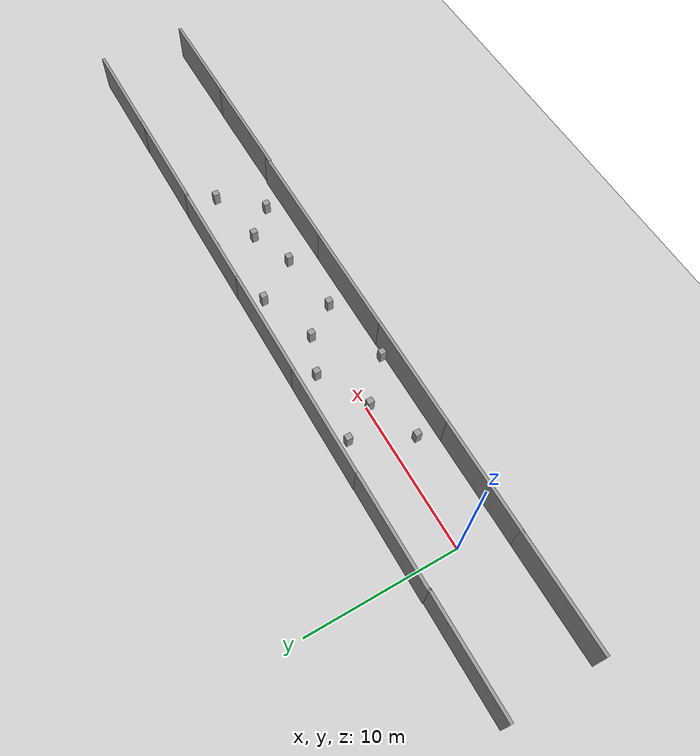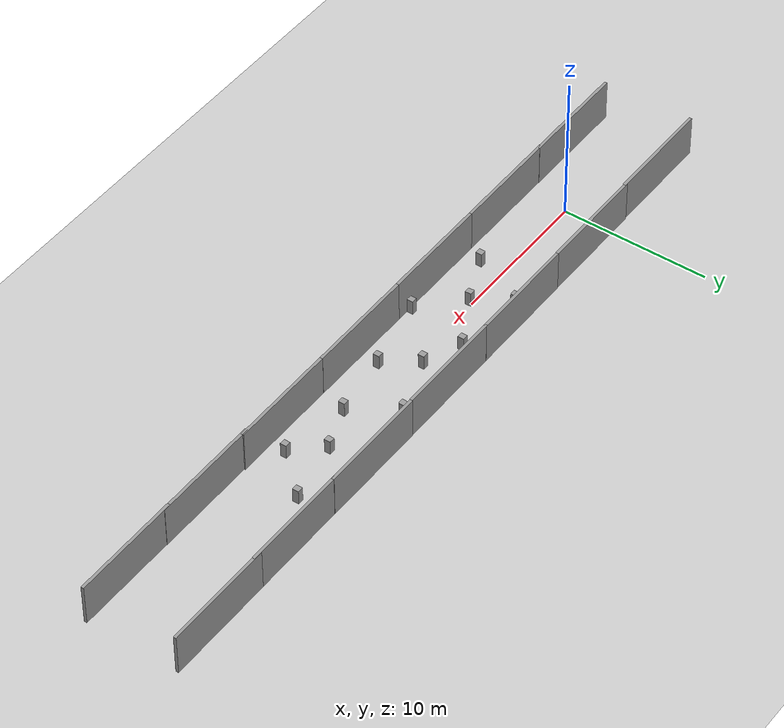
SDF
<sdf version="1.6">
 <world name="default">
  <plugin filename="gz-sim-physics-system" name="gz::sim::systems::Physics"/>
  <plugin filename="gz-sim-sensors-system" name="gz::sim::systems::Sensors">
   <render_engine>ogre2</render_engine>
  </plugin>
  <plugin filename="gz-sim-imu-system" name="gz::sim::systems::Imu"/>
  <plugin filename="gz-sim-scene-broadcaster-system" name="gz::sim::systems::SceneBroadcaster"/>
  <plugin filename="gz-sim-user-commands-system" name="gz::sim::systems::UserCommands"/>
  <light name="sun" type="directional">
   <pose>0 0 10 0 -0 0</pose>
   <diffuse>0.8 0.8 0.8 1</diffuse>
   <specular>0.2 0.2 0.2 1</specular>
   <attenuation>
    <range>1000</range>
    <constant>0.9</constant>
    <linear>0.01</linear>
    <quadratic>0.001</quadratic>
   </attenuation>
   <direction>-0.5 0.1 -0.9</direction>
  </light>
  <model name="ground_plane">
   <static>1</static>
   <link name="link">
    <collision name="collision">
     <geometry><plane><normal>0 0 1</normal><size>100 100</size></plane></geometry>
     <surface><friction><ode><mu>1000</mu><mu2>1000</mu2></ode></friction></surface>
    </collision>
    <visual name="visual">
     <cast_shadows>0</cast_shadows>
     <geometry><plane><normal>0 0 1</normal><size>100 100</size></plane></geometry>
     <material>
      <script><uri>file://media/materials/scripts/gazebo.material</uri><name>Gazebo/Grey</name></script>
     </material>
    </visual>
    <velocity_decay><linear>0</linear><angular>0</angular></velocity_decay>
   </link>
  </model>
  <physics name="default_physics" default="0" type="ode">
   <max_step_size>0.001</max_step_size>
   <real_time_factor>1</real_time_factor>
   <real_time_update_rate>1000</real_time_update_rate>
  </physics>
  <scene><ambient>0.4 0.4 0.4 1</ambient><background>0.7 0.7 0.7 1</background><shadows>1</shadows></scene>
  <spherical_coordinates>
   <surface_model>EARTH_WGS84</surface_model>
   <latitude_deg>0</latitude_deg>
   <longitude_deg>0</longitude_deg>
   <elevation>0</elevation>
   <heading_deg>0</heading_deg>
  </spherical_coordinates>
  <model name="grey_wall">
   <static>1</static>
   <link name="link">
    <pose>0 0 1.4 0 -0 0</pose>
    <collision name="collision"><geometry><box><size>7.5 0.2 2.8</size></box></geometry></collision>
    <visual name="visual">
     <cast_shadows>0</cast_shadows>
     <geometry><box><size>7.5 0.2 2.8</size></box></geometry>
     <material>
      <script>
       <uri>model://grey_wall/materials/scripts</uri>
       <uri>model://grey_wall/materials/textures</uri>
       <name>vrc/grey_wall</name>
      </script>
     </material>
    </visual>
    <velocity_decay><linear>0</linear><angular>0</angular></velocity_decay>
   </link>
   <pose>17.0188 3.262 0 0 -0 0</pose>
  </model>
  <model name="grey_wall_0">
   <static>1</static>
   <link name="link">
    <pose>0 0 1.4 0 -0 0</pose>
    <collision name="collision"><geometry><box><size>7.5 0.2 2.8</size></box></geometry></collision>
    <visual name="visual">
     <cast_shadows>0</cast_shadows>
     <geometry><box><size>7.5 0.2 2.8</size></box></geometry>
     <material>
      <script>
       <uri>model://grey_wall/materials/scripts</uri>
       <uri>model://grey_wall/materials/textures</uri>
       <name>vrc/grey_wall</name>
      </script>
     </material>
    </visual>
    <velocity_decay><linear>0</linear><angular>0</angular></velocity_decay>
   </link>
   <pose>17.2246 -2.87669 0 0 -0 0</pose>
  </model>
  <gravity>0 0 -9.8</gravity>
  <magnetic_field>6e-06 2.3e-05 -4.2e-05</magnetic_field>
  <atmosphere type="adiabatic"/>
  <model name="grey_wall_clone">
   <static>1</static>
   <link name="link">
    <pose>0 0 1.4 0 -0 0</pose>
    <collision name="collision"><geometry><box><size>7.5 0.2 2.8</size></box></geometry></collision>
    <visual name="visual">
     <cast_shadows>0</cast_shadows>
     <geometry><box><size>7.5 0.2 2.8</size></box></geometry>
     <material>
      <script>
       <uri>model://grey_wall/materials/scripts</uri>
       <uri>model://grey_wall/materials/textures</uri>
       <name>vrc/grey_wall</name>
      </script>
     </material>
    </visual>
    <velocity_decay><linear>0</linear><angular>0</angular></velocity_decay>
   </link>
   <pose>2.15825 3.25343 0 0 -0 0</pose>
  </model>
  <model name="grey_wall_clone_0">
   <static>1</static>
   <link name="link">
    <pose>0 0 1.4 0 -0 0</pose>
    <collision name="collision"><geometry><box><size>7.5 0.2 2.8</size></box></geometry></collision>
    <visual name="visual">
     <cast_shadows>0</cast_shadows>
     <geometry><box><size>7.5 0.2 2.8</size></box></geometry>
     <material>
      <script>
       <uri>model://grey_wall/materials/scripts</uri>
       <uri>model://grey_wall/materials/textures</uri>
       <name>vrc/grey_wall</name>
      </script>
     </material>
    </visual>
    <velocity_decay><linear>0</linear><angular>0</angular></velocity_decay>
   </link>
   <pose>2.23318 -2.88881 0 0 -0 0</pose>
  </model>
  <model name="grey_wall_clone_1">
   <static>1</static>
   <link name="link">
    <pose>0 0 1.4 0 -0 0</pose>
    <collision name="collision"><geometry><box><size>7.5 0.2 2.8</size></box></geometry></collision>
    <visual name="visual">
     <cast_shadows>0</cast_shadows>
     <geometry><box><size>7.5 0.2 2.8</size></box></geometry>
     <material>
      <script>
       <uri>model://grey_wall/materials/scripts</uri>
       <uri>model://grey_wall/materials/textures</uri>
       <name>vrc/grey_wall</name>
      </script>
     </material>
    </visual>
    <velocity_decay><linear>0</linear><angular>0</angular></velocity_decay>
   </link>
   <pose>9.72907 -2.8848 0 0 -0 0</pose>
  </model>
  <model name="grey_wall_clone_2">
   <static>1</static>
   <link name="link">
    <pose>0 0 1.4 0 -0 0</pose>
    <collision name="collision"><geometry><box><size>7.5 0.2 2.8</size></box></geometry></collision>
    <visual name="visual">
     <cast_shadows>0</cast_shadows>
     <geometry><box><size>7.5 0.2 2.8</size></box></geometry>
     <material>
      <script>
       <uri>model://grey_wall/materials/scripts</uri>
       <uri>model://grey_wall/materials/textures</uri>
       <name>vrc/grey_wall</name>
      </script>
     </material>
    </visual>
    <velocity_decay><linear>0</linear><angular>0</angular></velocity_decay>
   </link>
   <pose>9.63475 3.26714 0 0 -0 0</pose>
  </model>
  <model name="grey_wall_clone_3">
   <static>1</static>
   <link name="link">
    <pose>0 0 1.4 0 -0 0</pose>
    <collision name="collision"><geometry><box><size>7.5 0.2 2.8</size></box></geometry></collision>
    <visual name="visual">
     <cast_shadows>0</cast_shadows>
     <geometry><box><size>7.5 0.2 2.8</size></box></geometry>
     <material>
      <script>
       <uri>model://grey_wall/materials/scripts</uri>
       <uri>model://grey_wall/materials/textures</uri>
       <name>vrc/grey_wall</name>
      </script>
     </material>
    </visual>
    <velocity_decay><linear>0</linear><angular>0</angular></velocity_decay>
   </link>
   <pose>24.4959 3.27099 0 0 -0 0</pose>
  </model>
  <model name="grey_wall_clone_4">
   <static>1</static>
   <link name="link">
    <pose>0 0 1.4 0 -0 0</pose>
    <collision name="collision"><geometry><box><size>7.5 0.2 2.8</size></box></geometry></collision>
    <visual name="visual">
     <cast_shadows>0</cast_shadows>
     <geometry><box><size>7.5 0.2 2.8</size></box></geometry>
     <material>
      <script>
       <uri>model://grey_wall/materials/scripts</uri>
       <uri>model://grey_wall/materials/textures</uri>
       <name>vrc/grey_wall</name>
      </script>
     </material>
    </visual>
    <velocity_decay><linear>0</linear><angular>0</angular></velocity_decay>
   </link>
   <pose>24.6598 -2.88231 0 0 -0 0</pose>
  </model>
  <model name="unit_box_0">
   <pose>12.4786 -2.57348 0.5 0 -0 0</pose>
   <link name="link">
    <inertial>
     <mass>1</mass>
     <inertia>
      <ixx>0.166667</ixx>
      <ixy>0</ixy>
      <ixz>0</ixz>
      <iyy>0.166667</iyy>
      <iyz>0</iyz>
      <izz>0.166667</izz>
     </inertia>
    </inertial>
    <collision name="collision"><geometry><box><size>0.392878 0.422643 1</size></box></geometry></collision>
    <visual name="visual">
     <geometry><box><size>0.392878 0.422643 1</size></box></geometry>
     <material>
      <script><name>Gazebo/Grey</name><uri>file://media/materials/scripts/gazebo.material</uri></script>
     </material>
    </visual>
   </link>
  </model>
  <model name="unit_box_0_clone_3">
   <pose>6.79128 -1.57502 0.500001 -1e-06 2e-06 -0.000748</pose>
   <link name="link">
    <inertial>
     <mass>1</mass>
     <inertia>
      <ixx>0.166667</ixx>
      <ixy>0</ixy>
      <ixz>0</ixz>
      <iyy>0.166667</iyy>
      <iyz>0</iyz>
      <izz>0.166667</izz>
     </inertia>
    </inertial>
    <collision name="collision"><geometry><box><size>0.392878 0.422643 1</size></box></geometry></collision>
    <visual name="visual">
     <geometry><box><size>0.392878 0.422643 1</size></box></geometry>
     <material>
      <script><name>Gazebo/Grey</name><uri>file://media/materials/scripts/gazebo.material</uri></script>
     </material>
    </visual>
   </link>
  </model>
  <model name="unit_box_0_clone_5_clone">
   <pose>9.94472 -0.178867 0.500001 1e-06 2e-06 -0.000518</pose>
   <link name="link">
    <inertial>
     <mass>1</mass>
     <inertia>
      <ixx>0.166667</ixx>
      <ixy>0</ixy>
      <ixz>0</ixz>
      <iyy>0.166667</iyy>
      <iyz>0</iyz>
      <izz>0.166667</izz>
     </inertia>
    </inertial>
    <collision name="collision"><geometry><box><size>0.392878 0.422643 1</size></box></geometry></collision>
    <visual name="visual">
     <geometry><box><size>0.392878 0.422643 1</size></box></geometry>
     <material>
      <script><name>Gazebo/Grey</name><uri>file://media/materials/scripts/gazebo.material</uri></script>
     </material>
    </visual>
   </link>
  </model>
  <model name="unit_box_0_clone_5_clone_1">
   <pose>8.5737 2.15115 0.500001 1e-06 2e-06 -2.6e-05</pose>
   <link name="link">
    <inertial>
     <mass>1</mass>
     <inertia>
      <ixx>0.166667</ixx>
      <ixy>0</ixy>
      <ixz>0</ixz>
      <iyy>0.166667</iyy>
      <iyz>0</iyz>
      <izz>0.166667</izz>
     </inertia>
    </inertial>
    <collision name="collision"><geometry><box><size>0.392878 0.422643 1</size></box></geometry></collision>
    <visual name="visual">
     <geometry><box><size>0.392878 0.422643 1</size></box></geometry>
     <material>
      <script><name>Gazebo/Grey</name><uri>file://media/materials/scripts/gazebo.material</uri></script>
     </material>
    </visual>
   </link>
  </model>
  <model name="unit_box_0_clone_5_clone_2_clone_1">
   <pose>13.3136 1.65051 0.500001 1e-06 -2e-06 -0.00106</pose>
   <link name="link">
    <inertial>
     <mass>1</mass>
     <inertia>
      <ixx>0.166667</ixx>
      <ixy>0</ixy>
      <ixz>0</ixz>
      <iyy>0.166667</iyy>
      <iyz>0</iyz>
      <izz>0.166667</izz>
     </inertia>
    </inertial>
    <collision name="collision"><geometry><box><size>0.392878 0.422643 1</size></box></geometry></collision>
    <visual name="visual">
     <geometry><box><size>0.392878 0.422643 1</size></box></geometry>
     <material>
      <script><name>Gazebo/Grey</name><uri>file://media/materials/scripts/gazebo.material</uri></script>
     </material>
    </visual>
   </link>
  </model>
  <model name="unit_box_0_clone_5_clone_2_clone_1_clone_0">
   <pose>15.8486 0.614841 0.499999 4e-06 -3e-06 -0.000872</pose>
   <link name="link">
    <inertial>
     <mass>1</mass>
     <inertia>
      <ixx>0.166667</ixx>
      <ixy>0</ixy>
      <ixz>0</ixz>
      <iyy>0.166667</iyy>
      <iyz>0</iyz>
      <izz>0.166667</izz>
     </inertia>
    </inertial>
    <collision name="collision"><geometry><box><size>0.392878 0.422643 1</size></box></geometry></collision>
    <visual name="visual">
     <geometry><box><size>0.392878 0.422643 1</size></box></geometry>
     <material>
      <script><name>Gazebo/Grey</name><uri>file://media/materials/scripts/gazebo.material</uri></script>
     </material>
    </visual>
   </link>
  </model>
  <model name="unit_box_0_clone_5_clone_2_clone_1_clone_2">
   <pose>19.7192 1.98952 0.499999 -4e-06 3e-06 -0.001105</pose>
   <link name="link">
    <inertial>
     <mass>1</mass>
     <inertia>
      <ixx>0.166667</ixx>
      <ixy>0</ixy>
      <ixz>0</ixz>
      <iyy>0.166667</iyy>
      <iyz>0</iyz>
      <izz>0.166667</izz>
     </inertia>
    </inertial>
    <collision name="collision"><geometry><box><size>0.392878 0.422643 1</size></box></geometry></collision>
    <visual name="visual">
     <geometry><box><size>0.392878 0.422643 1</size></box></geometry>
     <material>
      <script><name>Gazebo/Grey</name><uri>file://media/materials/scripts/gazebo.material</uri></script>
     </material>
    </visual>
   </link>
  </model>
  <model name="unit_box_0_clone_5_clone_2_clone_1_clone_3">
   <pose>17.3305 -1.52711 0.499999 -3e-06 -4e-06 -0.001322</pose>
   <link name="link">
    <inertial>
     <mass>1</mass>
     <inertia>
      <ixx>0.166667</ixx>
      <ixy>0</ixy>
      <ixz>0</ixz>
      <iyy>0.166667</iyy>
      <iyz>0</iyz>
      <izz>0.166667</izz>
     </inertia>
    </inertial>
    <collision name="collision"><geometry><box><size>0.392878 0.422643 1</size></box></geometry></collision>
    <visual name="visual">
     <geometry><box><size>0.392878 0.422643 1</size></box></geometry>
     <material>
      <script><name>Gazebo/Grey</name><uri>file://media/materials/scripts/gazebo.material</uri></script>
     </material>
    </visual>
   </link>
  </model>
  <model name="unit_box_0_clone_5_clone_2_clone_1_clone_5">
   <pose>24.489 0.22609 0.5 0 0 -0.000883</pose>
   <link name="link">
    <inertial>
     <mass>1</mass>
     <inertia>
      <ixx>0.166667</ixx>
      <ixy>0</ixy>
      <ixz>0</ixz>
      <iyy>0.166667</iyy>
      <iyz>0</iyz>
      <izz>0.166667</izz>
     </inertia>
    </inertial>
    <collision name="collision"><geometry><box><size>0.392878 0.422643 1</size></box></geometry></collision>
    <visual name="visual">
     <geometry><box><size>0.392878 0.422643 1</size></box></geometry>
     <material>
      <script><name>Gazebo/Grey</name><uri>file://media/materials/scripts/gazebo.material</uri></script>
     </material>
    </visual>
   </link>
  </model>
  <model name="unit_box_0_clone_5_clone_2_clone_1_clone_6">
   <pose>21.6001 -0.896521 0.499999 -3e-06 3e-06 -0.001282</pose>
   <link name="link">
    <inertial>
     <mass>1</mass>
     <inertia>
      <ixx>0.166667</ixx>
      <ixy>0</ixy>
      <ixz>0</ixz>
      <iyy>0.166667</iyy>
      <iyz>0</iyz>
      <izz>0.166667</izz>
     </inertia>
    </inertial>
    <collision name="collision"><geometry><box><size>0.392878 0.422643 1</size></box></geometry></collision>
    <visual name="visual">
     <geometry><box><size>0.392878 0.422643 1</size></box></geometry>
     <material>
      <script><name>Gazebo/Grey</name><uri>file://media/materials/scripts/gazebo.material</uri></script>
     </material>
    </visual>
   </link>
  </model>
  <model name="unit_box_0_clone_5_clone_2_clone_1_clone_7">
   <pose>24.6758 2.95966 0.499999 -5e-06 2e-06 -0</pose>
   <link name="link">
    <inertial>
     <mass>1</mass>
     <inertia>
      <ixx>0.166667</ixx>
      <ixy>0</ixy>
      <ixz>0</ixz>
      <iyy>0.166667</iyy>
      <iyz>0</iyz>
      <izz>0.166667</izz>
     </inertia>
    </inertial>
    <collision name="collision"><geometry><box><size>0.392878 0.422643 1</size></box></geometry></collision>
    <visual name="visual">
     <geometry><box><size>0.392878 0.422643 1</size></box></geometry>
     <material>
      <script><name>Gazebo/Grey</name><uri>file://media/materials/scripts/gazebo.material</uri></script>
     </material>
    </visual>
   </link>
  </model>
  <model name="unit_box_0_clone_5_clone_2_clone_1_clone_9">
   <pose>26.1853 -1.61689 0.499999 5e-06 2e-06 -0.000798</pose>
   <link name="link">
    <inertial>
     <mass>1</mass>
     <inertia>
      <ixx>0.166667</ixx>
      <ixy>0</ixy>
      <ixz>0</ixz>
      <iyy>0.166667</iyy>
      <iyz>0</iyz>
      <izz>0.166667</izz>
     </inertia>
    </inertial>
    <collision name="collision"><geometry><box><size>0.392878 0.422643 1</size></box></geometry></collision>
    <visual name="visual">
     <geometry><box><size>0.392878 0.422643 1</size></box></geometry>
     <material>
      <script><name>Gazebo/Grey</name><uri>file://media/materials/scripts/gazebo.material</uri></script>
     </material>
    </visual>
   </link>
  </model>
  <model name="unit_box_0_clone_5_clone_2_clone_1_clone_10">
   <pose>28.6055 1.05308 0.500001 2e-06 0 -0.000642</pose>
   <link name="link">
    <inertial>
     <mass>1</mass>
     <inertia>
      <ixx>0.166667</ixx>
      <ixy>0</ixy>
      <ixz>0</ixz>
      <iyy>0.166667</iyy>
      <iyz>0</iyz>
      <izz>0.166667</izz>
     </inertia>
    </inertial>
    <collision name="collision"><geometry><box><size>0.392878 0.422643 1</size></box></geometry></collision>
    <visual name="visual">
     <geometry><box><size>0.392878 0.422643 1</size></box></geometry>
     <material>
      <script><name>Gazebo/Grey</name><uri>file://media/materials/scripts/gazebo.material</uri></script>
     </material>
    </visual>
   </link>
  </model>
  <model name="grey_wall_clone_0_clone">
   <static>1</static>
   <link name="link">
    <pose>0 0 1.4 0 -0 0</pose>
    <collision name="collision"><geometry><box><size>7.5 0.2 2.8</size></box></geometry></collision>
    <visual name="visual">
     <cast_shadows>0</cast_shadows>
     <geometry><box><size>7.5 0.2 2.8</size></box></geometry>
     <material>
      <script>
       <uri>model://grey_wall/materials/scripts</uri>
       <uri>model://grey_wall/materials/textures</uri>
       <name>vrc/grey_wall</name>
      </script>
     </material>
    </visual>
    <velocity_decay><linear>0</linear><angular>0</angular></velocity_decay>
   </link>
   <pose>-5.01906 -2.88113 0 0 -0 0</pose>
  </model>
  <model name="grey_wall_clone_0_clone_0">
   <static>1</static>
   <link name="link">
    <pose>0 0 1.4 0 -0 0</pose>
    <collision name="collision"><geometry><box><size>7.5 0.2 2.8</size></box></geometry></collision>
    <visual name="visual">
     <cast_shadows>0</cast_shadows>
     <geometry><box><size>7.5 0.2 2.8</size></box></geometry>
     <material>
      <script>
       <uri>model://grey_wall/materials/scripts</uri>
       <uri>model://grey_wall/materials/textures</uri>
       <name>vrc/grey_wall</name>
      </script>
     </material>
    </visual>
    <velocity_decay><linear>0</linear><angular>0</angular></velocity_decay>
   </link>
   <pose>-5.19213 3.20907 0 0 -0 0</pose>
  </model>
  <model name="grey_wall_clone_0_clone_1">
   <static>1</static>
   <link name="link">
    <pose>0 0 1.4 0 -0 0</pose>
    <collision name="collision"><geometry><box><size>7.5 0.2 2.8</size></box></geometry></collision>
    <visual name="visual">
     <cast_shadows>0</cast_shadows>
     <geometry><box><size>7.5 0.2 2.8</size></box></geometry>
     <material>
      <script>
       <uri>model://grey_wall/materials/scripts</uri>
       <uri>model://grey_wall/materials/textures</uri>
       <name>vrc/grey_wall</name>
      </script>
     </material>
    </visual>
    <velocity_decay><linear>0</linear><angular>0</angular></velocity_decay>
   </link>
   <pose>31.7137 3.25615 0 0 -0 0</pose>
  </model>
  <model name="grey_wall_clone_0_clone_2">
   <static>1</static>
   <link name="link">
    <pose>0 0 1.4 0 -0 0</pose>
    <collision name="collision"><geometry><box><size>7.5 0.2 2.8</size></box></geometry></collision>
    <visual name="visual">
     <cast_shadows>0</cast_shadows>
     <geometry><box><size>7.5 0.2 2.8</size></box></geometry>
     <material>
      <script>
       <uri>model://grey_wall/materials/scripts</uri>
       <uri>model://grey_wall/materials/textures</uri>
       <name>vrc/grey_wall</name>
      </script>
     </material>
    </visual>
    <velocity_decay><linear>0</linear><angular>0</angular></velocity_decay>
   </link>
   <pose>31.7112 -2.94424 0 0 -0 0</pose>
  </model>
  <model name="grey_wall_clone_0_clone_3">
   <static>1</static>
   <link name="link">
    <pose>0 0 1.4 0 -0 0</pose>
    <collision name="collision"><geometry><box><size>7.5 0.2 2.8</size></box></geometry></collision>
    <visual name="visual">
     <cast_shadows>0</cast_shadows>
     <geometry><box><size>7.5 0.2 2.8</size></box></geometry>
     <material>
      <script>
       <uri>model://grey_wall/materials/scripts</uri>
       <uri>model://grey_wall/materials/textures</uri>
       <name>vrc/grey_wall</name>
      </script>
     </material>
    </visual>
    <velocity_decay><linear>0</linear><angular>0</angular></velocity_decay>
   </link>
   <pose>38.7015 -2.96218 0 0 -0 0</pose>
  </model>
  <model name="grey_wall_clone_0_clone_4">
   <static>1</static>
   <link name="link">
    <pose>0 0 1.4 0 -0 0</pose>
    <collision name="collision"><geometry><box><size>7.5 0.2 2.8</size></box></geometry></collision>
    <visual name="visual">
     <cast_shadows>0</cast_shadows>
     <geometry><box><size>7.5 0.2 2.8</size></box></geometry>
     <material>
      <script>
       <uri>model://grey_wall/materials/scripts</uri>
       <uri>model://grey_wall/materials/textures</uri>
       <name>vrc/grey_wall</name>
      </script>
     </material>
    </visual>
    <velocity_decay><linear>0</linear><angular>0</angular></velocity_decay>
   </link>
   <pose>38.6161 3.26503 0 0 -0 0</pose>
  </model>
 </world>
</sdf>
